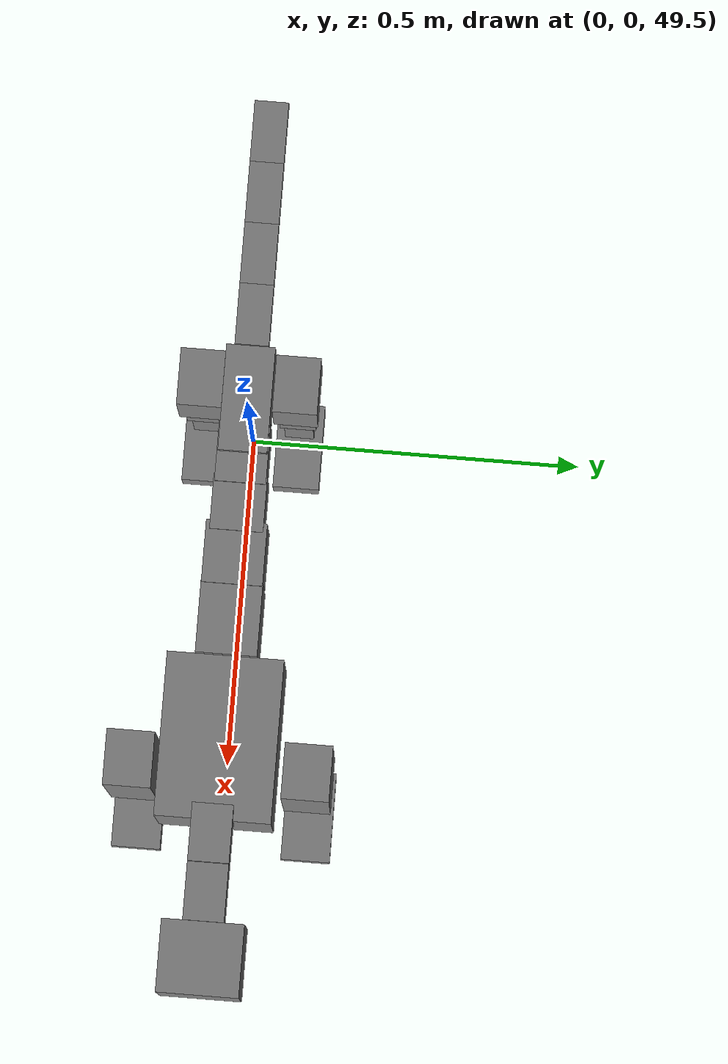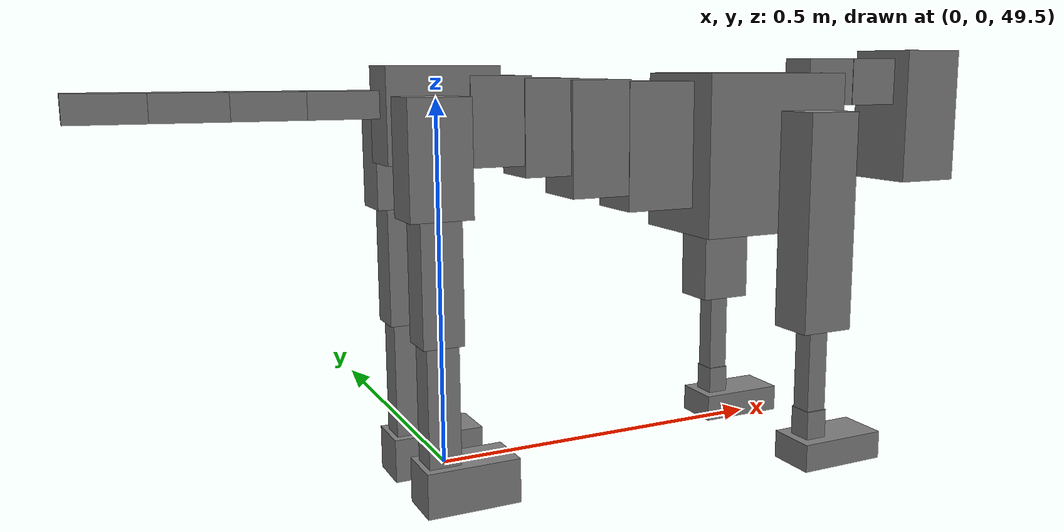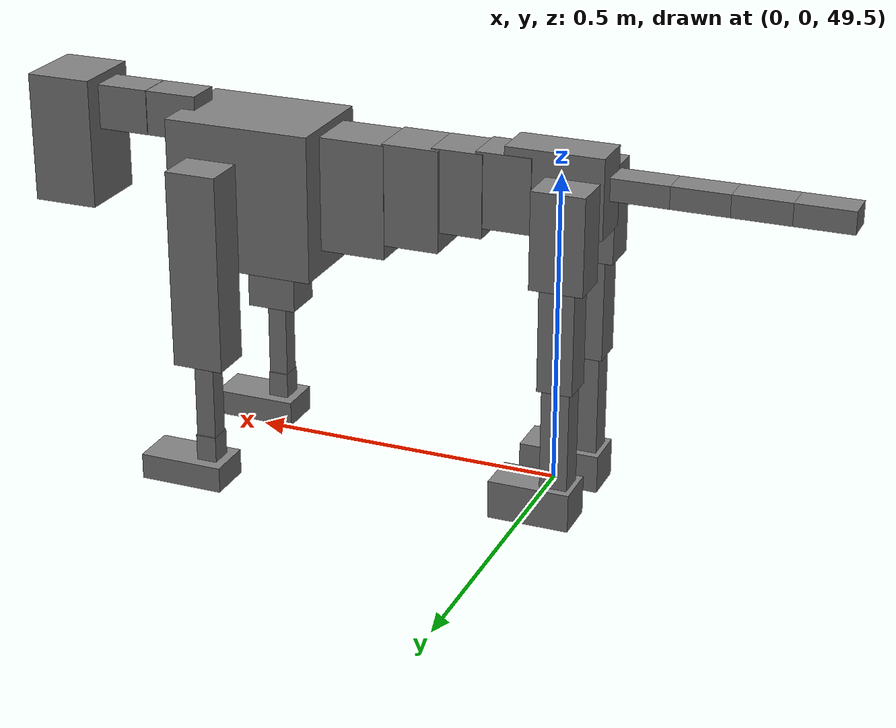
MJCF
<mujoco model="dog">

    <default>
        <joint armature="0.02" stiffness="1" damping="0.2" limited="true"/>
        <geom condim="3" friction="1 0.05 0.05" margin="0.01"/>
        <motor ctrllimited="true" ctrlrange="-1.0 1.0" forcelimited="true" gear="50"/>
    </default>

    <compiler inertiafromgeom="true" angle="radian"/>

    <option timestep="0.016" iterations="50" tolerance="1e-10" solver="Newton" jacobian="dense" cone="pyramidal"/>

    <size nconmax="20000" njmax="60000" nstack="5000000"/>
    <visual>
        <map force="0.1" zfar="30"/>
        <rgba haze="0.15 0.25 0.35 1"/>
        <quality shadowsize="2048"/>
        <global offwidth="800" offheight="800"/>
    </visual>

    <asset>
        <texture type="skybox" builtin="gradient" rgb1="0.3 0.5 0.7" rgb2="0 0 0" width="512" height="512"/>
        <texture name="texplane" type="2d" builtin="checker" rgb1=".2 .3 .4" rgb2=".1 0.15 0.2" width="512" height="512"
                 mark="cross" markrgb=".8 .8 .8"/>
        <texture name="texgeom" type="cube" builtin="flat" mark="cross" width="127" height="1278" rgb1="0.8 0.6 0.4"
                 rgb2="0.8 0.6 0.4" markrgb="1 1 1" random="0.01"/>

        <material name="matplane" reflectance="0.3" texture="texplane" texrepeat="1 1" texuniform="true"/>
        <material name="matgeom" texture="texgeom" texuniform="true" rgba="0.8 0.6 .4 1"/>
    </asset>

    <worldbody>
        <geom name="floor" pos="0 0 0" size="0 0 .25" type="plane" material="matplane" condim="3"/>

        <light directional="false" diffuse=".2 .2 .2" specular="0 0 0" pos="0 0 5" dir="0 0 -1" castshadow="false"/>
        <light mode="targetbodycom" target="torso" directional="false" diffuse=".8 .8 .8" specular="0.3 0.3 0.3"
               pos="0 0 4.0" dir="0 0 -1"/>

        <body name="root" pos="0 0 50">
            <freejoint name="root_1"/>
            <geom type="box" pos="0 0 -0.02" size="0.0774  0.0358  0.063" density="2030"/>

            <body name="spine1" pos="0.054 0 0">
                <joint name="spine1_y" axis="0 1 0" range="0 0.7" limited="true"/>
                <geom type="box" pos="0.02375 0 -0.03" size="0.04375  0.0375  0.05985" density="2030"/>

                <body name="spine2" pos="0.0612 0 0">
                    <joint name="spine2_y" axis="0 1 0" range="-0.15 0.15" limited="true"/>
                    <geom type="box" pos="0.03555  0  -0.04" size="0.04055  0.039  0.06615" density="2030"/>

                    <body name="spine3" pos="0.0730 0 0">
                        <joint name="spine3_y" axis="0 1 0" range="-0.15 0.15" limited="true"/>
                        <geom type="box" pos="0.03555  0  -0.057" size="0.04555  0.0445  0.081" density="2030"/>

                        <body name="spine4" pos="0.0780 0 0">
                            <joint name="spine4_y" axis="0 1 0" range="-0.15 0.15" limited="true"/>
                            <geom type="box" pos="0.05265  0  -0.07" size="0.05265  0.045  0.09135" density="2030"/>

                            <body name="torso" pos="0.1082 0 0">
                                <joint name="torso_y" axis="0 1 0" range="-0.15 0.15" limited="true"/>
                                <geom type="box" pos="0.11925  0  -0.085" size="0.11925  0.085  0.11745"
                                      density="2030"/>

                                <body name="neck1" pos="0.2160  0   0.0180">
                                    <joint name="neck1_y" axis="0 1 0" range="-1.2  -1" limited="true"/>
                                    <geom type="box" pos="0.0423  0  0" size="0.0423  0.03  0.036" density="2325"/>

                                    <body name="neck2" pos="0.0853  0  0">
                                        <joint name="neck2_y" axis="0 1 0" range="0.1  0" limited="true"/>
                                        <geom type="box" pos="0.0423  0  0" size="0.0423  0.03  0.036" density="2325"/>

                                        <body name="head" pos="0.0853  0  0">
                                            <joint name="head_y" axis="0 1 0" range="-0.3  -0.2" limited="true"/>
                                            <geom type="box" pos="0.0531  0  -0.055" size="0.0531  0.06  0.1044"
                                                  density="4030"/>

                                        </body>
                                    </body>
                                </body>

                                <body name="front_shoulder" pos="0.156  0   -0.0480">
                                    <joint name="front_shoulder_y" axis="0 1 0" range="-1 1.5" limited="true"/>
                                    <geom type="box" pos="0 0.13 -0.1321" size="0.0411  0.0351  0.1588" density="1158"/>
                                    <geom type="box" pos="0 -0.13 -0.1321" size="0.0411  0.0351  0.1588"
                                          density="1158"/>

                                    <body name="front_elbow" pos="0  0  -0.2643">
                                        <joint name="front_elbow_y" axis="0 1 0" range="-2 0" limited="true"/>
                                        <geom type="box" pos="0 0.13 -0.0820" size="0.0158  0.0162  0.0820"
                                              density="1081"/>
                                        <geom type="box" pos="0 -0.13 -0.0820" size="0.0158  0.0162  0.0820"
                                              density="1081"/>

                                        <body name="front_wrist" pos="0  0  -0.1639">
                                            <joint name="front_wrist_y" axis="0 1 0" range="-0.2 0" limited="true"/>
                                            <geom type="box" pos="0 0.13 -0.0222" size="0.0167  0.0186  0.0354"
                                                  density="1664"/>
                                            <geom type="box" pos="0 -0.13 -0.0222" size="0.0167  0.0186  0.0354"
                                                  density="1664"/>

                                            <body name="front_finger_end" pos="0  0  -0.0444">
                                                <joint name="front_finger_y" axis="0 1 0" range="-0.4 1"
                                                       limited="true"/>
                                                <geom type="box" pos="0.0374  0.13  -0.0058"
                                                      size="0.0686  0.0374  0.0208" density="1515"/>
                                                <geom type="box" pos="0.0374  -0.13  -0.0058"
                                                      size="0.0686  0.0374  0.0208" density="1515"/>

                                            </body>

                                        </body>
                                    </body>
                                </body>

                            </body>
                        </body>
                    </body>
                </body>
            </body>

            <body name="back_hip" pos="-0.03 0 -0.018">
                <joint name="back_hip_y" axis="0 1 0" range="-1.5 0.3" limited="true"/>
                <geom type="box" pos="0 0.07 -0.0537" size="0.0418  0.0328  0.0765" density="1154"/>
                <geom type="box" pos="0 -0.07 -0.0537" size="0.0418  0.0328  0.0765" density="1154"/>

                <body name="back_knee" pos="0  0  -0.1074">
                    <joint name="back_knee_y" axis="0 1 0" range="0 2.8" limited="true"/>
                    <geom type="box" pos="0 0.07 -0.0850" size="0.0277  0.0273  0.1005" density="1227"/>
                    <geom type="box" pos="0 -0.07 -0.0850" size="0.0277  0.0273  0.1005" density="1227"/>

                    <body name="back_ankle" pos="0  0  -0.1700">
                        <joint name="back_ankle_y" axis="0 1 0" range="-2.2 0" limited="true"/>
                        <geom type="box" pos="0 0.07 -0.0956" size="0.0219  0.0219  0.1068" density="1284"/>
                        <geom type="box" pos="0 -0.07 -0.0956" size="0.0219  0.0219  0.1068" density="1284"/>

                        <body name="back_toe_end" pos="0  0  -0.1911">
                            <joint name="back_toe_y" axis="0 1 0" range="-0.4 1" limited="true"/>
                            <geom type="box" pos="0.0352  0.07  -0.0157" size="0.0646  0.0352  0.0307" density="1515"/>
                            <geom type="box" pos="0.0352  -0.07  -0.0157" size="0.0646  0.0352  0.0307" density="1515"/>

                        </body>
                    </body>
                </body>
            </body>

            <body name="tail1" pos="-0.074 0 -0.006">
                <joint name="tail1_y" axis="0 1 0" range="-0.2 0.2" limited="true"/>
                <geom type="box" pos="-0.0536  0  0" size="0.045  0.025  0.0175" density="1587"/>

                <body name="tail2" pos="-0.09 0 0">
                    <joint name="tail2_y" axis="0 1 0" range="-0.2 0.2" limited="true"/>
                    <geom type="box" pos="-0.0536  0  0" size="0.045  0.025  0.0175" density="1587"/>

                    <body name="tail3" pos="-0.09 0 0">
                        <joint name="tail3_y" axis="0 1 0" range="-0.2 0.2" limited="true"/>
                        <geom type="box" pos="-0.0536  0  0" size="0.045  0.025  0.0175" density="1587"/>

                        <body name="tail4" pos="-0.09 0 0">
                            <joint name="tail4_y" axis="0 1 0" range="-0.2 0.2" limited="true"/>
                            <geom type="box" pos="-0.0536  0  0" size="0.045  0.025  0.0175" density="1587"/>

                        </body>
                    </body>
                </body>
            </body>
        </body>
    </worldbody>

    <actuator>
        <motor joint="spine1_y" forcerange="-150 150     "/>
        <motor joint="spine2_y" forcerange="-150 150     "/>
        <motor joint="spine3_y" forcerange="-150 150     "/>
        <motor joint="spine4_y" forcerange="-150 150     "/>
        <motor joint="torso_y" forcerange="-150 150     "/>
        <motor joint="neck1_y" forcerange="-100 100       "/>
        <motor joint="neck2_y" forcerange="-100 100       "/>
        <motor joint="head_y" forcerange="-150 150       "/>
        <motor joint="front_shoulder_y" forcerange="-179.78 154.49"/>
        <motor joint="front_elbow_y" forcerange="-115.18 102.49"/>
        <motor joint="front_wrist_y" forcerange="-72.25 76.39"/>
        <motor joint="front_finger_y" forcerange="-82.66 76.77"/>
        <motor joint="back_hip_y" forcerange="-359.61 277.60"/>
        <motor joint="back_knee_y" forcerange="-334.81 262.98"/>
        <motor joint="back_angle_y" forcerange="-105.57 144.49"/>
        <motor joint="back_toe_y" forcerange="-100.93 100.86"/>
        <motor joint="tail1_y" forcerange="-50 50     "/>
        <motor joint="tail2_y" forcerange="-50 50     "/>
        <motor joint="tail3_y" forcerange="-50 50     "/>
        <motor joint="tail4_y" forcerange="-50 50     "/>
    </actuator>
</mujoco>
